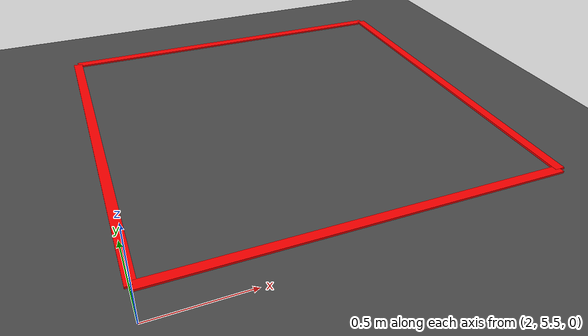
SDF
<sdf version="1.7">
 <world name="default">
  <light name="sun" type="directional">
   <pose>0 0 10 0 -0 0</pose>
   <diffuse>0.8 0.8 0.8 1</diffuse>
   <specular>0.2 0.2 0.2 1</specular>
   <attenuation>
    <range>1000</range>
    <constant>0.9</constant>
    <linear>0.01</linear>
    <quadratic>0.001</quadratic>
   </attenuation>
   <direction>-0.5 0.1 -0.9</direction>
   <spot><inner_angle>0</inner_angle><outer_angle>0</outer_angle><falloff>0</falloff></spot>
  </light>
  <model name="ground_plane">
   <static>1</static>
   <link name="link">
    <collision name="collision">
     <geometry><plane><normal>0 0 1</normal><size>100 100</size></plane></geometry>
     <surface>
      <contact><collide_bitmask>65535</collide_bitmask></contact>
      <friction><ode><mu>100</mu><mu2>50</mu2></ode></friction>
     </surface>
    </collision>
    <visual name="visual">
     <cast_shadows>0</cast_shadows>
     <geometry><plane><normal>0 0 1</normal><size>100 100</size></plane></geometry>
     <material>
      <script><uri>file://media/materials/scripts/gazebo.material</uri><name>Gazebo/Grey</name></script>
     </material>
    </visual>
   </link>
  </model>
  <gravity>0 0 -9.8</gravity>
  <magnetic_field>6e-06 2.3e-05 -4.2e-05</magnetic_field>
  <atmosphere type="adiabatic"/>
  <physics type="ode">
   <max_step_size>0.001</max_step_size>
   <real_time_factor>1</real_time_factor>
   <real_time_update_rate>1000</real_time_update_rate>
  </physics>
  <scene><ambient>0.4 0.4 0.4 1</ambient><background>0.7 0.7 0.7 1</background><shadows>1</shadows></scene>
  <spherical_coordinates>
   <surface_model>EARTH_WGS84</surface_model>
   <latitude_deg>0</latitude_deg>
   <longitude_deg>0</longitude_deg>
   <elevation>0</elevation>
   <heading_deg>0</heading_deg>
  </spherical_coordinates>
  <light name="user_directional_light_0" type="directional">
   <pose>12.5924 29.0347 1 0 -0 0</pose>
   <diffuse>0.5 0.5 0.5 1</diffuse>
   <specular>0.1 0.1 0.1 1</specular>
   <direction>0.1 0.1 -0.9</direction>
   <attenuation>
    <range>20</range>
    <constant>0.5</constant>
    <linear>0.01</linear>
    <quadratic>0.001</quadratic>
   </attenuation>
   <spot><inner_angle>0</inner_angle><outer_angle>0</outer_angle><falloff>0</falloff></spot>
  </light>
  <light name="user_directional_light_1" type="directional">
   <pose>11.9865 -27.8356 1 0 -0 0</pose>
   <diffuse>0.5 0.5 0.5 1</diffuse>
   <specular>0.1 0.1 0.1 1</specular>
   <direction>0.1 0.1 -0.9</direction>
   <attenuation>
    <range>20</range>
    <constant>0.5</constant>
    <linear>0.01</linear>
    <quadratic>0.001</quadratic>
   </attenuation>
   <spot><inner_angle>0</inner_angle><outer_angle>0</outer_angle><falloff>0</falloff></spot>
  </light>
  <light name="user_directional_light_2" type="directional">
   <pose>-11.73 29.4383 1 0 -0 0</pose>
   <diffuse>0.5 0.5 0.5 1</diffuse>
   <specular>0.1 0.1 0.1 1</specular>
   <direction>0.1 0.1 -0.9</direction>
   <attenuation>
    <range>20</range>
    <constant>0.5</constant>
    <linear>0.01</linear>
    <quadratic>0.001</quadratic>
   </attenuation>
   <spot><inner_angle>0</inner_angle><outer_angle>0</outer_angle><falloff>0</falloff></spot>
  </light>
  <light name="user_directional_light_3" type="directional">
   <pose>-12.4873 -27.4824 1 0 -0 0</pose>
   <diffuse>0.5 0.5 0.5 1</diffuse>
   <specular>0.1 0.1 0.1 1</specular>
   <direction>0.1 0.1 -0.9</direction>
   <attenuation>
    <range>20</range>
    <constant>0.5</constant>
    <linear>0.01</linear>
    <quadratic>0.001</quadratic>
   </attenuation>
   <spot><inner_angle>0</inner_angle><outer_angle>0</outer_angle><falloff>0</falloff></spot>
  </light>
  <light name="user_directional_light_4" type="directional">
   <pose>15.1656 0.977923 1 0 -0 0</pose>
   <diffuse>0.5 0.5 0.5 1</diffuse>
   <specular>0.1 0.1 0.1 1</specular>
   <direction>0.1 0.1 -0.9</direction>
   <attenuation>
    <range>20</range>
    <constant>0.5</constant>
    <linear>0.01</linear>
    <quadratic>0.001</quadratic>
   </attenuation>
   <spot><inner_angle>0</inner_angle><outer_angle>0</outer_angle><falloff>0</falloff></spot>
  </light>
  <light name="user_directional_light_5" type="directional">
   <pose>-16.5241 -1.24234 1 0 -0 0</pose>
   <diffuse>0.5 0.5 0.5 1</diffuse>
   <specular>0.1 0.1 0.1 1</specular>
   <direction>0.1 0.1 -0.9</direction>
   <attenuation>
    <range>20</range>
    <constant>0.5</constant>
    <linear>0.01</linear>
    <quadratic>0.001</quadratic>
   </attenuation>
   <spot><inner_angle>0</inner_angle><outer_angle>0</outer_angle><falloff>0</falloff></spot>
  </light>
  <model name="asphalt_plane">
   <static>1</static>
   <link name="link">
    <collision name="collision"><geometry><box><size>20 20 0.1</size></box></geometry></collision>
    <visual name="visual">
     <cast_shadows>0</cast_shadows>
     <geometry><box><size>20 20 0.1</size></box></geometry>
     <material>
      <script>
       <uri>model://asphalt_plane/materials/scripts</uri>
       <uri>model://asphalt_plane/materials/textures</uri>
       <name>vrc/asphalt</name>
      </script>
     </material>
    </visual>
   </link>
   <pose>0.02713 0.018846 0 0 -0 0</pose>
  </model>
  <model name="red_square_box">
   <static>0</static>
   <link name="link">
    <inertial>
     <mass>5</mass>
     <inertia><ixx>0.083</ixx><iyy>0.083</iyy><izz>0.083</izz><ixy>0</ixy><ixz>0</ixz><iyz>0</iyz></inertia>
    </inertial>
    <visual name="left_line">
     <pose>-1 0 0.2 0 -0 0</pose>
     <geometry><box><size>0.05 2 0.01</size></box></geometry>
     <material><ambient>1 0 0 1</ambient><diffuse>1 0 0 1</diffuse></material>
    </visual>
    <collision name="left_line_collision">
     <pose>-1 0 0.2 0 -0 0</pose>
     <geometry><box><size>0.05 2 0.01</size></box></geometry>
    </collision>
    <visual name="right_line">
     <pose>1 0 0.2 0 -0 0</pose>
     <geometry><box><size>0.05 2 0.01</size></box></geometry>
     <material><ambient>1 0 0 1</ambient><diffuse>1 0 0 1</diffuse></material>
    </visual>
    <collision name="right_line_collision">
     <pose>1 0 0.2 0 -0 0</pose>
     <geometry><box><size>0.05 2 0.01</size></box></geometry>
    </collision>
    <visual name="top_line">
     <pose>0 1 0.2 0 -0 0</pose>
     <geometry><box><size>2 0.05 0.01</size></box></geometry>
     <material><ambient>1 0 0 1</ambient><diffuse>1 0 0 1</diffuse></material>
    </visual>
    <collision name="top_line_collision">
     <pose>0 1 0.2 0 -0 0</pose>
     <geometry><box><size>2 0.05 0.01</size></box></geometry>
    </collision>
    <visual name="bottom_line">
     <pose>0 -1 0.2 0 -0 0</pose>
     <geometry><box><size>2 0.05 0.01</size></box></geometry>
     <material><ambient>1 0 0 1</ambient><diffuse>1 0 0 1</diffuse></material>
    </visual>
    <collision name="bottom_line_collision">
     <pose>0 -1 0.2 0 -0 0</pose>
     <geometry><box><size>2 0.05 0.01</size></box></geometry>
    </collision>
   </link>
   <pose>3 6.5 0 0 -0 0</pose>
  </model>
 </world>
</sdf>
